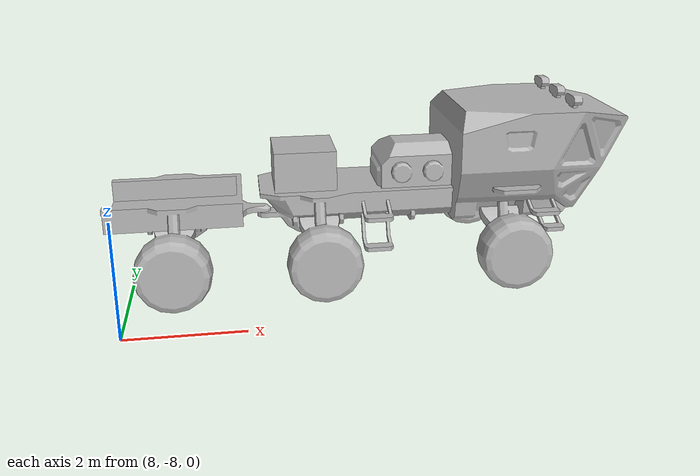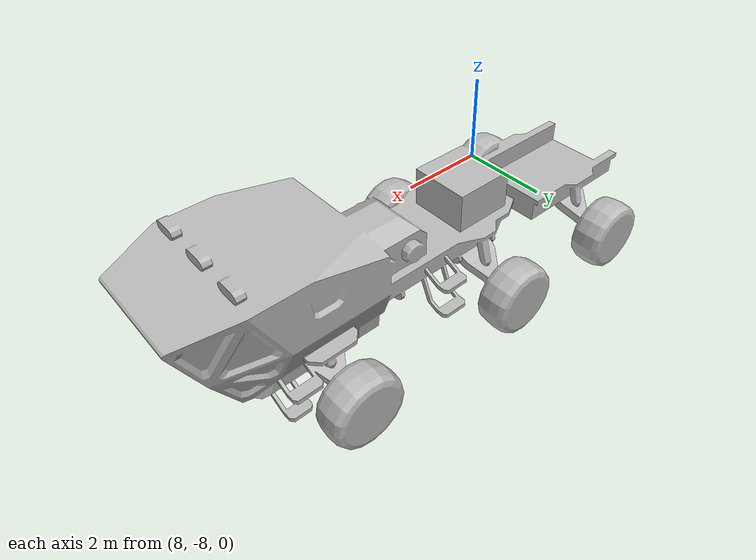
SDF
<sdf version="1.6">
 <world name="SRC_finals">
  <include>
   <pose>13.1154005856547
        -5.378032090032062
        0
        0
        0
        1.5707963267948963</pose>
   <uri>model://mars_explorer</uri>
  </include>
 </world>
</sdf>
